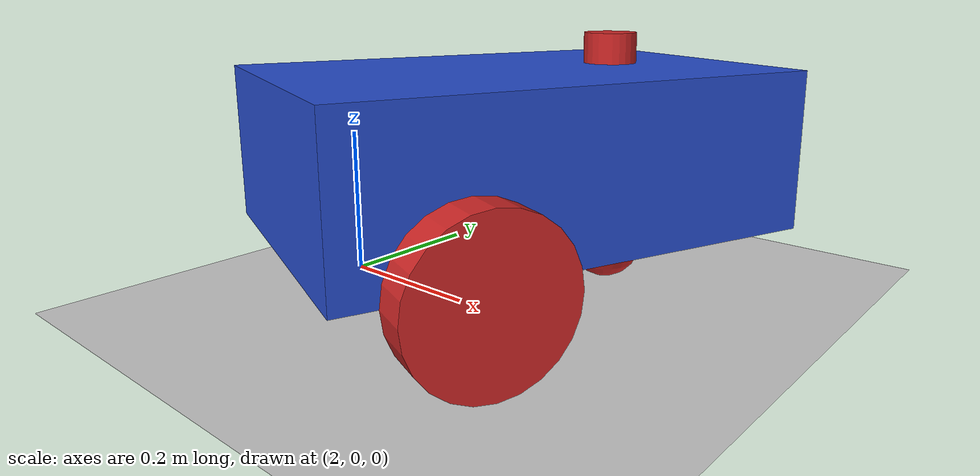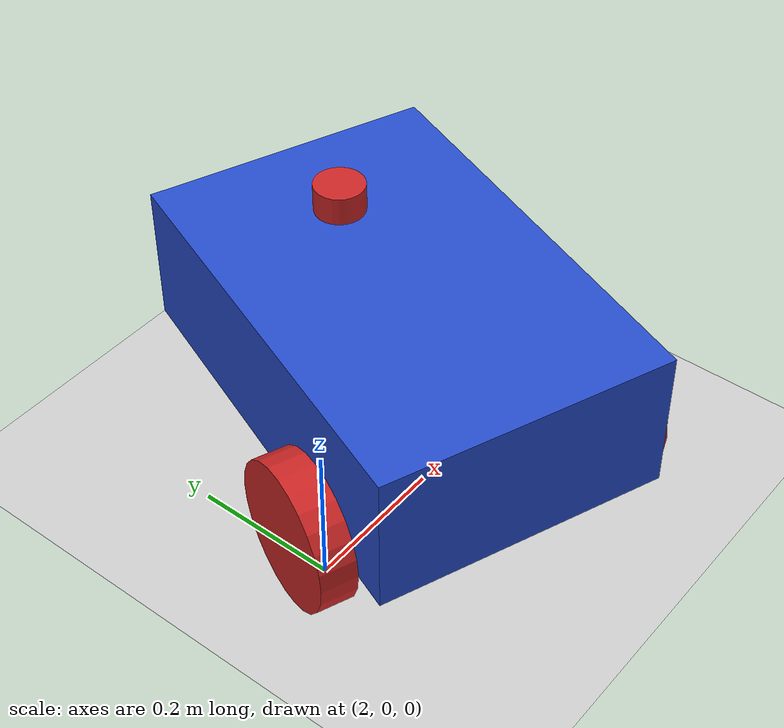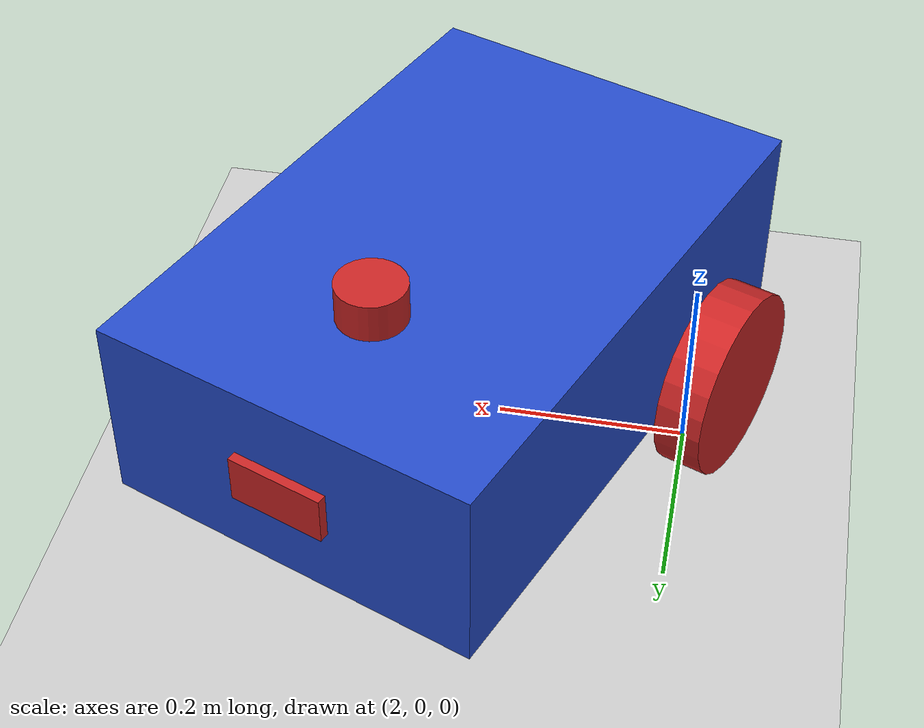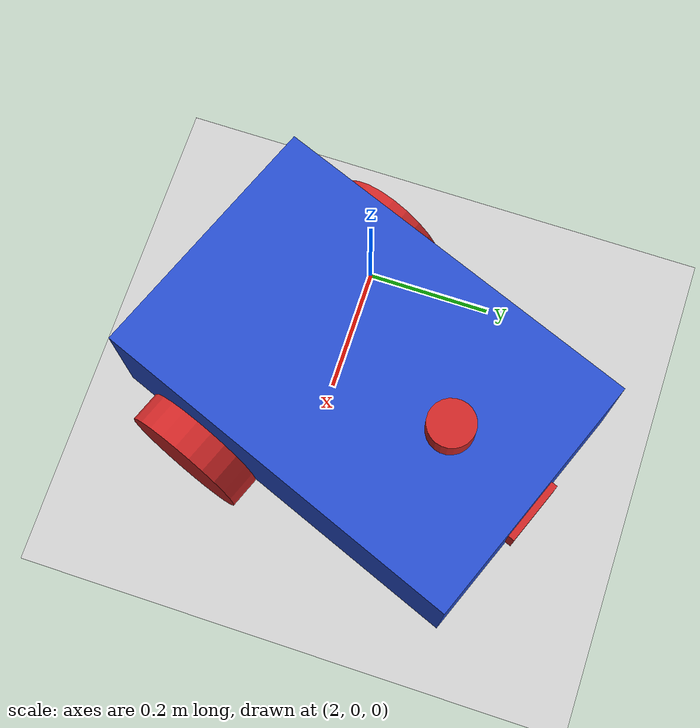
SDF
<sdf version="1.7">
 <world name="default">
  <light name="sun" type="directional">
   <pose>0 0 10 0 -0 0</pose>
   <diffuse>0.8 0.8 0.8 1</diffuse>
   <specular>0.2 0.2 0.2 1</specular>
   <attenuation>
    <range>1000</range>
    <constant>0.9</constant>
    <linear>0.01</linear>
    <quadratic>0.001</quadratic>
   </attenuation>
   <direction>-0.5 0.1 -0.9</direction>
   <spot><inner_angle>0</inner_angle><outer_angle>0</outer_angle><falloff>0</falloff></spot>
  </light>
  <model name="ground_plane">
   <static>1</static>
   <link name="ground_plane_link">
    <collision name="collision">
     <geometry><plane><normal>0 0 1</normal><size>100 100</size></plane></geometry>
     <surface>
      <contact><collide_bitmask>65535</collide_bitmask></contact>
      <friction><ode><mu>100</mu><mu2>50</mu2></ode></friction>
     </surface>
    </collision>
    <visual name="visual">
     <cast_shadows>0</cast_shadows>
     <geometry><plane><normal>0 0 1</normal><size>100 100</size></plane></geometry>
     <material>
      <script><uri>file://media/materials/scripts/gazebo.material</uri><name>Gazebo/Grey</name></script>
     </material>
    </visual>
   </link>
  </model>
  <gravity>0 0 -9.8</gravity>
  <magnetic_field>6e-06 2.3e-05 -4.2e-05</magnetic_field>
  <atmosphere type="adiabatic"/>
  <physics type="ode">
   <max_step_size>0.001</max_step_size>
   <real_time_factor>1</real_time_factor>
   <real_time_update_rate>1000</real_time_update_rate>
  </physics>
  <scene><ambient>0.4 0.4 0.4 1</ambient><background>0.7 0.7 0.7 1</background><shadows>1</shadows></scene>
  <audio><device>default</device></audio>
  <spherical_coordinates>
   <surface_model>EARTH_WGS84</surface_model>
   <latitude_deg>0</latitude_deg>
   <longitude_deg>0</longitude_deg>
   <elevation>0</elevation>
   <heading_deg>0</heading_deg>
  </spherical_coordinates>
  <model name="my_robot">
   <link name="base_footprint">
    <inertial>
     <pose>0.02114 0 0.188947 0 -0 0</pose>
     <mass>5.7</mass>
     <inertia>
      <ixx>0.680736</ixx>
      <ixy>0</ixy>
      <ixz>0.00811816</ixz>
      <iyy>0.901081</iyy>
      <iyz>0</iyz>
      <izz>0.355747</izz>
     </inertia>
    </inertial>
    <collision name="base_footprint_fixed_joint_lump__base_link_collision">
     <pose>0 0 0.2 0 -0 0</pose>
     <geometry><box><size>0.6 0.4 0.2</size></box></geometry>
    </collision>
    <collision name="base_footprint_fixed_joint_lump__camera_link_collision_1">
     <pose>0.305 0 0.2 0 -0 0</pose>
     <geometry><box><size>0.01 0.1 0.05</size></box></geometry>
    </collision>
    <collision name="base_footprint_fixed_joint_lump__lidar_link_collision_2">
     <pose>0.15 0 0.32 0 -0 0</pose>
     <geometry><cylinder><length>0.04</length><radius>0.035</radius></cylinder></geometry>
    </collision>
    <collision name="base_footprint_fixed_joint_lump__caster_wheel_collision_3">
     <pose>0.15 0 0.05 0 -0 0</pose>
     <geometry><sphere><radius>0.05</radius></sphere></geometry>
     <surface><friction><ode><mu>0.1</mu><mu2>0.1</mu2></ode></friction></surface>
    </collision>
    <visual name="base_footprint_fixed_joint_lump__base_link_visual">
     <pose>0 0 0.2 0 -0 0</pose>
     <geometry><box><size>0.6 0.4 0.2</size></box></geometry>
     <material>
      <script><name>Gazebo/Blue</name><uri>file://media/materials/scripts/gazebo.material</uri></script>
     </material>
    </visual>
    <visual name="base_footprint_fixed_joint_lump__camera_link_visual_1">
     <pose>0.305 0 0.2 0 -0 0</pose>
     <geometry><box><size>0.01 0.1 0.05</size></box></geometry>
     <material>
      <script><name>Gazebo/Red</name><uri>file://media/materials/scripts/gazebo.material</uri></script>
     </material>
    </visual>
    <visual name="base_footprint_fixed_joint_lump__lidar_link_visual_2">
     <pose>0.15 0 0.32 0 -0 0</pose>
     <geometry><cylinder><length>0.04</length><radius>0.035</radius></cylinder></geometry>
     <material>
      <script><name>Gazebo/Red</name><uri>file://media/materials/scripts/gazebo.material</uri></script>
     </material>
    </visual>
    <visual name="base_footprint_fixed_joint_lump__caster_wheel_visual_3">
     <pose>0.15 0 0.05 0 -0 0</pose>
     <geometry><sphere><radius>0.05</radius></sphere></geometry>
     <material>
      <script><name>Gazebo/Red</name><uri>file://media/materials/scripts/gazebo.material</uri></script>
     </material>
    </visual>
    <sensor name="camera_sensor" type="camera">
     <visualize>1</visualize>
     <update_rate>10</update_rate>
     <plugin name="camera_controller" filename="libgazebo_ros_camera.so">
      <frame_name>camera_link_optical</frame_name>
     </plugin>
     <pose>0.305 0 0.2 0 -0 0</pose>
     <camera>
      <horizontal_fov>1.047</horizontal_fov>
      <image><width>320</width><height>240</height></image>
      <clip><near>0.1</near><far>100</far></clip>
     </camera>
    </sensor>
    <sensor name="rplidar_sensor" type="ray">
     <visualize>1</visualize>
     <update_rate>5.5</update_rate>
     <ray>
      <scan>
       <horizontal>
        <samples>360</samples>
        <resolution>1</resolution>
        <min_angle>-3.14159</min_angle>
        <max_angle>3.14159</max_angle>
       </horizontal>
       <vertical><samples>1</samples><min_angle>0</min_angle><max_angle>0</max_angle></vertical>
      </scan>
      <range><min>0.12</min><max>3.5</max><resolution>0.015</resolution></range>
      <noise><type>gaussian</type><mean>0</mean><stddev>0.01</stddev></noise>
     </ray>
     <plugin name="gazebo_ros_ray_sensor" filename="libgazebo_ros_ray_sensor.so">
      <ros><namespace>/</namespace><remapping>~/out:=/scan</remapping></ros>
      <output_type>sensor_msgs/LaserScan</output_type>
      <frame_name>lidar_link</frame_name>
     </plugin>
     <pose>0.15 0 0.32 0 -0 0</pose>
    </sensor>
   </link>
   <joint name="left_wheel_joint" type="revolute">
    <pose relative_to="base_footprint">-0.15 0.225 0.1 0 -0 0</pose>
    <parent>base_footprint</parent>
    <child>left_wheel</child>
    <axis>
     <xyz>0 1 0</xyz>
     <limit><lower>-1e+16</lower><upper>1e+16</upper></limit>
     <dynamics><spring_reference>0</spring_reference><spring_stiffness>0</spring_stiffness></dynamics>
    </axis>
   </joint>
   <link name="left_wheel">
    <pose relative_to="left_wheel_joint">0 0 0 0 -0 0</pose>
    <inertial>
     <pose>0 0 0.025 0 -0 0</pose>
     <mass>1</mass>
     <inertia><ixx>0.0108333</ixx><ixy>0</ixy><ixz>0</ixz><iyy>0.0108333</iyy><iyz>0</iyz><izz>0.02</izz></inertia>
    </inertial>
    <collision name="left_wheel_collision">
     <pose>0 0 0 1.5708 -0 0</pose>
     <geometry><cylinder><length>0.05</length><radius>0.1</radius></cylinder></geometry>
     <surface><friction><ode><mu>1</mu><mu2>1</mu2></ode></friction></surface>
    </collision>
    <visual name="left_wheel_visual">
     <pose>0 0 0 1.5708 -0 0</pose>
     <geometry><cylinder><length>0.05</length><radius>0.1</radius></cylinder></geometry>
     <material>
      <script><name>Gazebo/Red</name><uri>file://media/materials/scripts/gazebo.material</uri></script>
     </material>
    </visual>
   </link>
   <joint name="right_wheel_joint" type="revolute">
    <pose relative_to="base_footprint">-0.15 -0.225 0.1 0 -0 0</pose>
    <parent>base_footprint</parent>
    <child>right_wheel</child>
    <axis>
     <xyz>0 1 0</xyz>
     <limit><lower>-1e+16</lower><upper>1e+16</upper></limit>
     <dynamics><spring_reference>0</spring_reference><spring_stiffness>0</spring_stiffness></dynamics>
    </axis>
   </joint>
   <link name="right_wheel">
    <pose relative_to="right_wheel_joint">0 0 0 0 -0 0</pose>
    <inertial>
     <pose>0 0 0.025 0 -0 0</pose>
     <mass>1</mass>
     <inertia><ixx>0.0108333</ixx><ixy>0</ixy><ixz>0</ixz><iyy>0.0108333</iyy><iyz>0</iyz><izz>0.02</izz></inertia>
    </inertial>
    <collision name="right_wheel_collision">
     <pose>0 0 0 1.5708 -0 0</pose>
     <geometry><cylinder><length>0.05</length><radius>0.1</radius></cylinder></geometry>
     <surface><friction><ode><mu>1</mu><mu2>1</mu2></ode></friction></surface>
    </collision>
    <visual name="right_wheel_visual">
     <pose>0 0 0 1.5708 -0 0</pose>
     <geometry><cylinder><length>0.05</length><radius>0.1</radius></cylinder></geometry>
     <material>
      <script><name>Gazebo/Red</name><uri>file://media/materials/scripts/gazebo.material</uri></script>
     </material>
    </visual>
   </link>
   <static>0</static>
   <plugin name="diff_drive_controller" filename="libgazebo_ros_diff_drive.so">
    <update_rate>50</update_rate>
    <left_joint>left_wheel_joint</left_joint>
    <right_joint>right_wheel_joint</right_joint>
    <wheel_separation>0.45</wheel_separation>
    <wheel_diameter>0.2</wheel_diameter>
    <max_wheel_torque>20</max_wheel_torque>
    <max_wheel_acceleration>1.0</max_wheel_acceleration>
    <publish_odom>1</publish_odom>
    <publish_odom_tf>1</publish_odom_tf>
    <publish_wheel_tf>1</publish_wheel_tf>
    <odometry_frame>odom</odometry_frame>
    <robot_base_frame>base_footprint</robot_base_frame>
    <command_topic>cmd_vel</command_topic>
    <odometry_topic>odom</odometry_topic>
   </plugin>
   <pose>2.23178 0.066723 0 0 -0 1.19704</pose>
  </model>
 </world>
</sdf>
